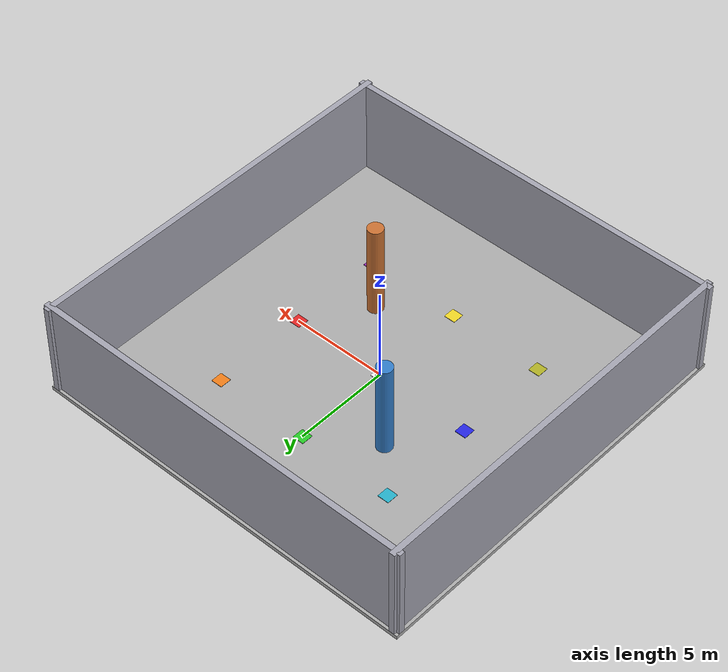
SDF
<?xml version="1.0" ?>
<sdf version="1.9">
  <world name="indoor_arena">

    <gravity>0 0 -9.81</gravity>

    <spherical_coordinates>
      <surface_model>EARTH_WGS84</surface_model>
      <world_frame_orientation>ENU</world_frame_orientation>
      <latitude_deg>47.397742</latitude_deg>
      <longitude_deg>8.545594</longitude_deg>
      <elevation>488.0</elevation>
      <heading_deg>0</heading_deg>
    </spherical_coordinates>

    <physics name="default_physics" type="ode">
      <max_step_size>0.004</max_step_size>
      <real_time_factor>1.0</real_time_factor>
      <real_time_update_rate>250</real_time_update_rate>
    </physics>

    <scene>
      <ambient>0.75 0.75 0.75 1</ambient>
      <background>0.85 0.88 0.92 1</background>
      <shadows>false</shadows>
    </scene>

    <light name="sun" type="directional">
      <cast_shadows>false</cast_shadows>
      <pose>0 0 100 0 0 0</pose>
      <diffuse>0.95 0.95 0.95 1</diffuse>
      <specular>0.2 0.2 0.2 1</specular>
      <direction>-0.45 0.15 -0.88</direction>
    </light>

    <model name="ground">
      <static>true</static>
      <link name="link">
        <collision name="collision">
          <geometry>
            <box><size>20.6 20.6 0.2</size></box>
          </geometry>
        </collision>
        <visual name="visual">
          <geometry>
            <box><size>20.6 20.6 0.2</size></box>
          </geometry>
          <material>
            <ambient>0.58 0.58 0.58 1</ambient>
            <diffuse>0.68 0.68 0.68 1</diffuse>
          </material>
        </visual>
      </link>
      <pose>0 0 -0.1 0 0 0</pose>
    </model>

    <model name="wall_north">
      <static>true</static>
      <link name="link">
        <collision name="collision"><geometry><box><size>20.6 0.3 5</size></box></geometry></collision>
        <visual name="visual">
          <geometry><box><size>20.6 0.3 5</size></box></geometry>
          <material><ambient>0.55 0.55 0.6 1</ambient><diffuse>0.65 0.65 0.7 1</diffuse></material>
        </visual>
      </link>
      <pose>0 10 2.5 0 0 0</pose>
    </model>
    <model name="wall_south">
      <static>true</static>
      <link name="link">
        <collision name="collision"><geometry><box><size>20.6 0.3 5</size></box></geometry></collision>
        <visual name="visual">
          <geometry><box><size>20.6 0.3 5</size></box></geometry>
          <material><ambient>0.55 0.55 0.6 1</ambient><diffuse>0.65 0.65 0.7 1</diffuse></material>
        </visual>
      </link>
      <pose>0 -10 2.5 0 0 0</pose>
    </model>
    <model name="wall_east">
      <static>true</static>
      <link name="link">
        <collision name="collision"><geometry><box><size>0.3 20.6 5</size></box></geometry></collision>
        <visual name="visual">
          <geometry><box><size>0.3 20.6 5</size></box></geometry>
          <material><ambient>0.55 0.55 0.6 1</ambient><diffuse>0.65 0.65 0.7 1</diffuse></material>
        </visual>
      </link>
      <pose>10 0 2.5 0 0 0</pose>
    </model>
    <model name="wall_west">
      <static>true</static>
      <link name="link">
        <collision name="collision"><geometry><box><size>0.3 20.6 5</size></box></geometry></collision>
        <visual name="visual">
          <geometry><box><size>0.3 20.6 5</size></box></geometry>
          <material><ambient>0.55 0.55 0.6 1</ambient><diffuse>0.65 0.65 0.7 1</diffuse></material>
        </visual>
      </link>
      <pose>-10 0 2.5 0 0 0</pose>
    </model>

    <model name="pillar_1">
      <static>true</static>
      <link name="link">
        <collision name="collision"><geometry><cylinder><radius>0.4</radius><length>5</length></cylinder></geometry></collision>
        <visual name="visual">
          <geometry><cylinder><radius>0.4</radius><length>5</length></cylinder></geometry>
          <material><ambient>0.7 0.35 0.15 1</ambient><diffuse>0.8 0.45 0.2 1</diffuse></material>
        </visual>
      </link>
      <pose>3 -3 2.5 0 0 0</pose>
    </model>
    <model name="pillar_2">
      <static>true</static>
      <link name="link">
        <collision name="collision"><geometry><cylinder><radius>0.4</radius><length>5</length></cylinder></geometry></collision>
        <visual name="visual">
          <geometry><cylinder><radius>0.4</radius><length>5</length></cylinder></geometry>
          <material><ambient>0.15 0.4 0.7 1</ambient><diffuse>0.2 0.5 0.8 1</diffuse></material>
        </visual>
      </link>
      <pose>-3 3 2.5 0 0 0</pose>
    </model>

    <model name="flow_marker_center"><static>true</static><link name="link">
      <visual name="visual"><geometry><box><size>0.6 0.6 0.02</size></box></geometry>
        <material><ambient>0.9 0.9 0.9 1</ambient><diffuse>0.97 0.97 0.97 1</diffuse></material></visual>
      <collision name="collision"><geometry><box><size>0.6 0.6 0.02</size></box></geometry></collision>
    </link><pose>0 0 0.01 0 0 0</pose></model>

    <model name="flow_marker_n"><static>true</static><link name="link">
      <visual name="visual"><geometry><box><size>0.6 0.6 0.02</size></box></geometry>
        <material><ambient>0.8 0.1 0.1 1</ambient><diffuse>0.9 0.15 0.15 1</diffuse></material></visual>
      <collision name="collision"><geometry><box><size>0.6 0.6 0.02</size></box></geometry></collision>
    </link><pose>5 0 0.01 0 0 0</pose></model>
    <model name="flow_marker_s"><static>true</static><link name="link">
      <visual name="visual"><geometry><box><size>0.6 0.6 0.02</size></box></geometry>
        <material><ambient>0.1 0.1 0.8 1</ambient><diffuse>0.15 0.15 0.9 1</diffuse></material></visual>
      <collision name="collision"><geometry><box><size>0.6 0.6 0.02</size></box></geometry></collision>
    </link><pose>-5 0 0.01 0 0 0</pose></model>
    <model name="flow_marker_e"><static>true</static><link name="link">
      <visual name="visual"><geometry><box><size>0.6 0.6 0.02</size></box></geometry>
        <material><ambient>0.1 0.7 0.1 1</ambient><diffuse>0.15 0.8 0.15 1</diffuse></material></visual>
      <collision name="collision"><geometry><box><size>0.6 0.6 0.02</size></box></geometry></collision>
    </link><pose>0 5 0.01 0 0 0</pose></model>
    <model name="flow_marker_w"><static>true</static><link name="link">
      <visual name="visual"><geometry><box><size>0.6 0.6 0.02</size></box></geometry>
        <material><ambient>0.85 0.75 0.1 1</ambient><diffuse>0.95 0.85 0.15 1</diffuse></material></visual>
      <collision name="collision"><geometry><box><size>0.6 0.6 0.02</size></box></geometry></collision>
    </link><pose>0 -5 0.01 0 0 0</pose></model>

    <model name="flow_marker_ne"><static>true</static><link name="link">
      <visual name="visual"><geometry><box><size>0.6 0.6 0.02</size></box></geometry>
        <material><ambient>0.85 0.4 0.05 1</ambient><diffuse>0.95 0.5 0.1 1</diffuse></material></visual>
      <collision name="collision"><geometry><box><size>0.6 0.6 0.02</size></box></geometry></collision>
    </link><pose>5 5 0.01 0 0 0</pose></model>
    <model name="flow_marker_nw"><static>true</static><link name="link">
      <visual name="visual"><geometry><box><size>0.6 0.6 0.02</size></box></geometry>
        <material><ambient>0.5 0.1 0.6 1</ambient><diffuse>0.6 0.15 0.7 1</diffuse></material></visual>
      <collision name="collision"><geometry><box><size>0.6 0.6 0.02</size></box></geometry></collision>
    </link><pose>5 -5 0.01 0 0 0</pose></model>
    <model name="flow_marker_se"><static>true</static><link name="link">
      <visual name="visual"><geometry><box><size>0.6 0.6 0.02</size></box></geometry>
        <material><ambient>0.1 0.6 0.7 1</ambient><diffuse>0.15 0.7 0.8 1</diffuse></material></visual>
      <collision name="collision"><geometry><box><size>0.6 0.6 0.02</size></box></geometry></collision>
    </link><pose>-5 5 0.01 0 0 0</pose></model>
    <model name="flow_marker_sw"><static>true</static><link name="link">
      <visual name="visual"><geometry><box><size>0.6 0.6 0.02</size></box></geometry>
        <material><ambient>0.6 0.6 0.1 1</ambient><diffuse>0.7 0.7 0.15 1</diffuse></material></visual>
      <collision name="collision"><geometry><box><size>0.6 0.6 0.02</size></box></geometry></collision>
    </link><pose>-5 -5 0.01 0 0 0</pose></model>

  </world>
</sdf>
